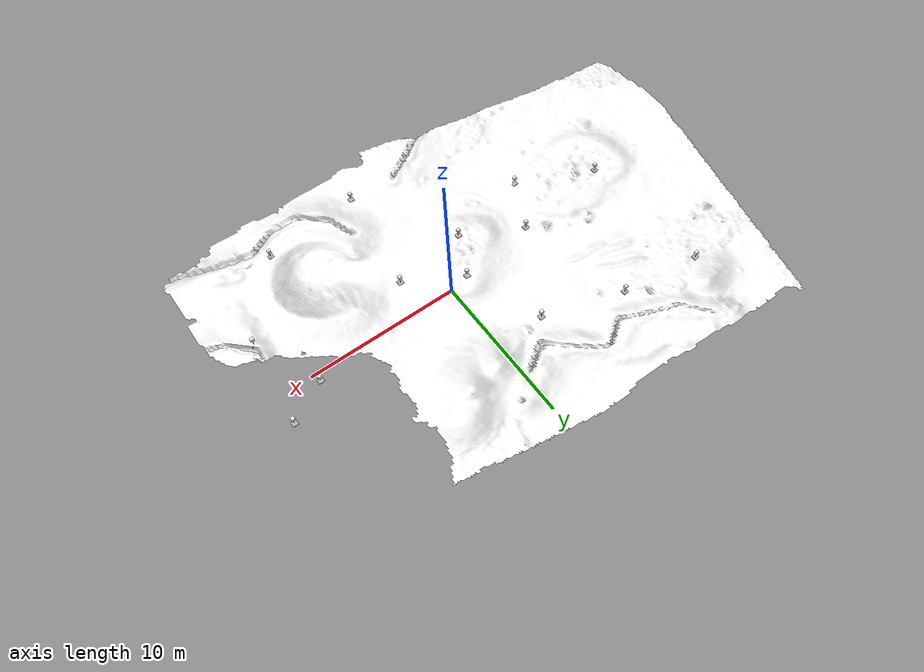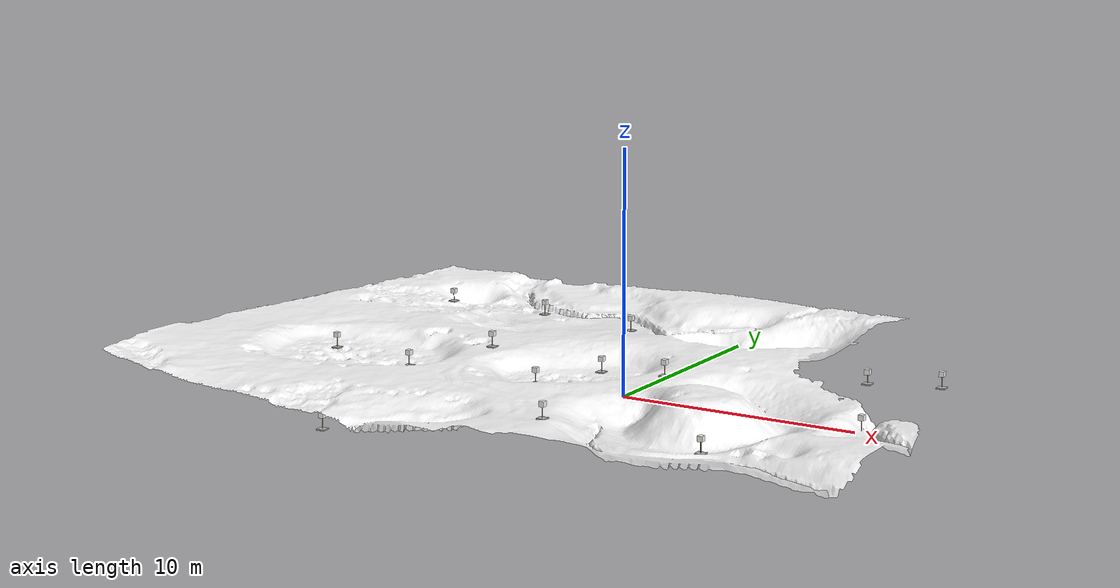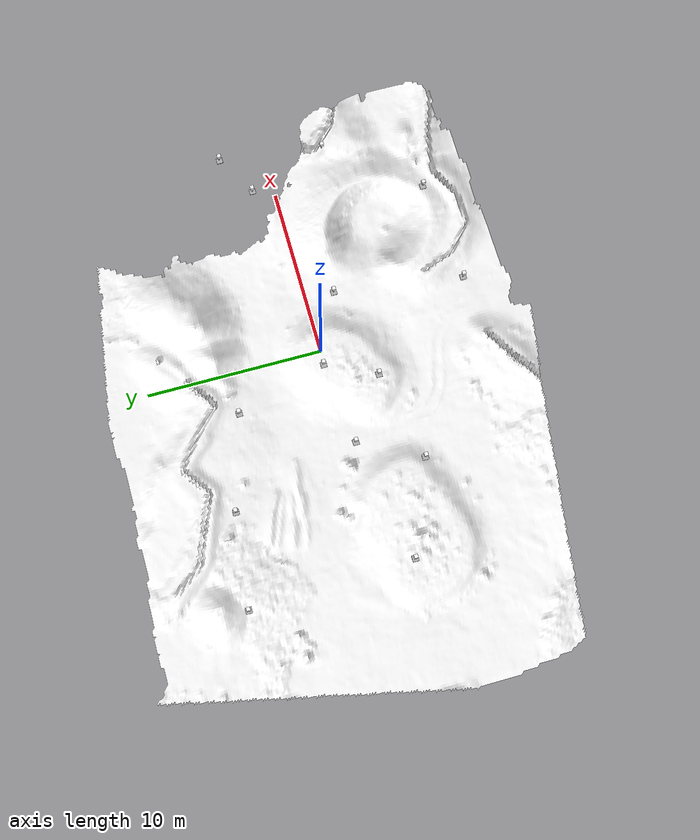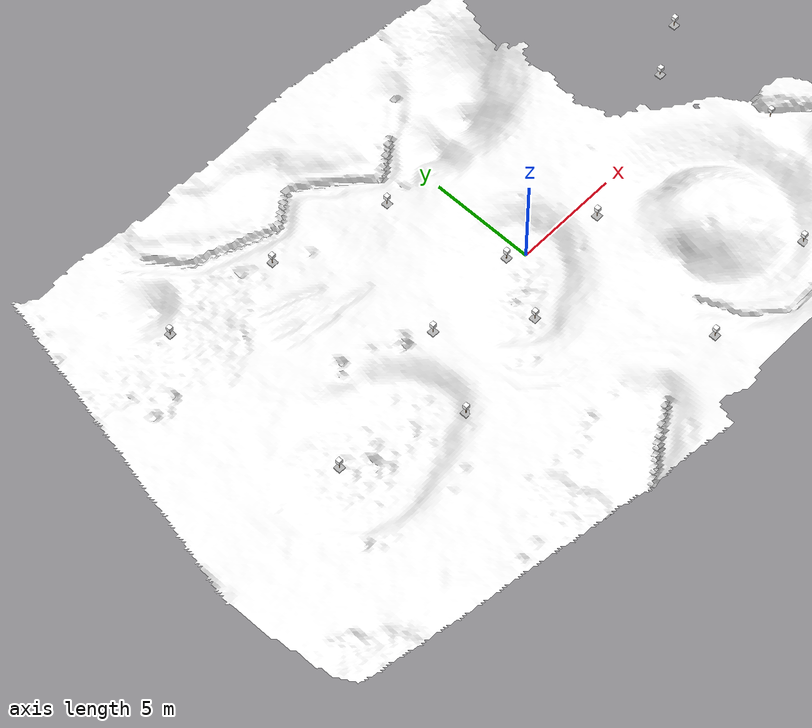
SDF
<?xml version='1.0' encoding='utf-8'?>
<sdf version="1.7">
  <world name="marsyard">
    <gravity>0 0 -9.81</gravity>
    <physics name="dart_physics" type="ignored">
      <max_step_size>0.003</max_step_size>
      <real_time_update_rate>333</real_time_update_rate>
      <real_time_factor>1.0</real_time_factor>
    </physics>
    <plugin filename="ignition-gazebo-physics-system" name="ignition::gazebo::systems::Physics" />
    <plugin filename="ignition-gazebo-user-commands-system" name="ignition::gazebo::systems::UserCommands" />
    <plugin filename="ignition-gazebo-scene-broadcaster-system" name="ignition::gazebo::systems::SceneBroadcaster" />
    <plugin filename="ignition-gazebo-contact-system" name="ignition::gazebo::systems::Contact" />
    <scene>
      <ambient>0.95 0.95 0.95 1</ambient>
      <background>0.70 0.70 0.70 1</background>
      <shadows>false</shadows>
    </scene>
    <light type="directional" name="sun">
      <cast_shadows>false</cast_shadows>
      <pose>0 0 30 0 0 0</pose>
      <diffuse>1 1 1 1</diffuse>
      <specular>0.15 0.15 0.15 1</specular>
      <direction>-0.35 0.1 -0.93</direction>
    </light>
    <include>
      <uri>model://mars_yard</uri>
      <pose>0 0 0 0 0 0</pose>
    </include>
    <model name="ArUco_51">
      <static>true</static>
      <pose>-12.8626 -1.6754 0.7429 0.0000 0.0000 0.0000</pose>
      <include>
        <uri>model://aruco_1</uri>
      </include>
    </model>
    <model name="ArUco_52">
      <static>true</static>
      <pose>-6.9112 -10.5555 0.2000 0.0000 0.0000 0.0000</pose>
      <include>
        <uri>model://aruco_2</uri>
      </include>
    </model>
    <model name="ArUco_53">
      <static>true</static>
      <pose>-7.7269 -3.7522 1.0725 0.0000 0.0000 0.0000</pose>
      <include>
        <uri>model://aruco_3</uri>
      </include>
    </model>
    <model name="ArUco_54">
      <static>true</static>
      <pose>-2.4448 -2.6740 0.8188 0.0000 0.0000 0.0000</pose>
      <include>
        <uri>model://aruco_4</uri>
      </include>
    </model>
    <model name="ArUco_55">
      <static>true</static>
      <pose>1.6623 -8.7646 1.4218 0.0000 0.0000 0.0000</pose>
      <include>
        <uri>model://aruco_5</uri>
      </include>
    </model>
    <model name="ArUco_56">
      <static>true</static>
      <pose>7.8746 -8.3014 0.9358 0.0000 0.0000 0.0000</pose>
      <include>
        <uri>model://aruco_6</uri>
      </include>
    </model>
    <model name="ArUco_57">
      <static>true</static>
      <pose>11.7097 -3.2808 1.0574 0.0000 0.0000 0.0000</pose>
      <include>
        <uri>model://aruco_7</uri>
      </include>
    </model>
    <model name="ArUco_58">
      <static>true</static>
      <pose>12.3320 2.6813 1.4401 0.0000 0.0000 0.0000</pose>
      <include>
        <uri>model://aruco_8</uri>
      </include>
    </model>
    <model name="ArUco_59">
      <static>true</static>
      <pose>9.8693 1.3461 1.5639 0.0000 0.0000 0.0000</pose>
      <include>
        <uri>model://aruco_9</uri>
      </include>
    </model>
    <model name="ArUco_60">
      <static>true</static>
      <pose>2.6570 -1.4837 1.5374 0.0000 0.0000 0.0000</pose>
      <include>
        <uri>model://aruco_10</uri>
      </include>
    </model>
    <model name="ArUco_61">
      <static>true</static>
      <pose>-1.0969 0.1368 0.8388 0.0000 0.0000 0.0000</pose>
      <include>
        <uri>model://aruco_11</uri>
      </include>
    </model>
    <model name="ArUco_62">
      <static>true</static>
      <pose>-2.7377 5.3769 1.2709 0.0000 0.0000 0.0000</pose>
      <include>
        <uri>model://aruco_12</uri>
      </include>
    </model>
    <model name="ArUco_63">
      <static>true</static>
      <pose>-5.9985 -0.3173 1.3591 0.0000 0.0000 0.0000</pose>
      <include>
        <uri>model://aruco_13</uri>
      </include>
    </model>
    <model name="ArUco_64">
      <static>true</static>
      <pose>-7.9646 6.9120 1.0548 0.0000 0.0000 0.0000</pose>
      <include>
        <uri>model://aruco_14</uri>
      </include>
    </model>
    <model name="ArUco_65">
      <static>true</static>
      <pose>-13.2124 7.5601 0.9365 0.0000 0.0000 0.0000</pose>
      <include>
        <uri>model://aruco_15</uri>
      </include>
    </model>
  </world>
</sdf>

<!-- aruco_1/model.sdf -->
<sdf version="1.6">
  <model name="aruco_1">
    <static>true</static>
    <link name="link">
      <!-- Concrete Base -->
      <visual name="base_visual">
        <pose>0 0 0.025 0 0 0</pose>
        <geometry>
          <box>
            <size>0.35 0.35 0.05</size>
          </box>
        </geometry>
        <material>
          <ambient>0.7 0.7 0.7 1</ambient>
          <diffuse>0.7 0.7 0.7 1</diffuse>
        </material>
      </visual>
      <collision name="base_collision">
        <pose>0 0 0.025 0 0 0</pose>
        <geometry>
          <box>
            <size>0.35 0.35 0.05</size>
          </box>
        </geometry>
      </collision>

      <!-- Wooden Pole -->
      <visual name="pole_visual">
        <pose>0 0 0.26 0 0 0</pose>
        <geometry>
          <cylinder>
            <radius>0.015</radius>
            <length>0.42</length>
          </cylinder>
        </geometry>
        <material>
          <ambient>0.6 0.4 0.2 1</ambient>
          <diffuse>0.6 0.4 0.2 1</diffuse>
        </material>
      </visual>
      <collision name="pole_collision">
        <pose>0 0 0.26 0 0 0</pose>
        <geometry>
          <cylinder>
            <radius>0.015</radius>
            <length>0.42</length>
          </cylinder>
        </geometry>
      </collision>

      <!-- Head Box with ArUco Texture -->
      <visual name="head_visual">
        <pose>0 0 0.575 0 0 0</pose>
        <geometry>
          <box>
            <size>0.21 0.21 0.21</size>
          </box>
        </geometry>
        <material>
          <ambient>1 1 1 1</ambient>
          <diffuse>1 1 1 1</diffuse>
          <pbr>
            <metal>
              <albedo_map>model://aruco_1/materials/textures/marker_1.png</albedo_map>
            </metal>
          </pbr>
        </material>
      </visual>
      <collision name="head_collision">
        <pose>0 0 0.575 0 0 0</pose>
        <geometry>
          <box>
            <size>0.21 0.21 0.21</size>
          </box>
        </geometry>
      </collision>
    </link>
  </model>
</sdf>

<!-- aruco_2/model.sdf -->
<sdf version="1.6">
  <model name="aruco_2">
    <static>true</static>
    <link name="link">
      <!-- Concrete Base -->
      <visual name="base_visual">
        <pose>0 0 0.025 0 0 0</pose>
        <geometry>
          <box>
            <size>0.35 0.35 0.05</size>
          </box>
        </geometry>
        <material>
          <ambient>0.7 0.7 0.7 1</ambient>
          <diffuse>0.7 0.7 0.7 1</diffuse>
        </material>
      </visual>
      <collision name="base_collision">
        <pose>0 0 0.025 0 0 0</pose>
        <geometry>
          <box>
            <size>0.35 0.35 0.05</size>
          </box>
        </geometry>
      </collision>

      <!-- Wooden Pole -->
      <visual name="pole_visual">
        <pose>0 0 0.26 0 0 0</pose>
        <geometry>
          <cylinder>
            <radius>0.015</radius>
            <length>0.42</length>
          </cylinder>
        </geometry>
        <material>
          <ambient>0.6 0.4 0.2 1</ambient>
          <diffuse>0.6 0.4 0.2 1</diffuse>
        </material>
      </visual>
      <collision name="pole_collision">
        <pose>0 0 0.26 0 0 0</pose>
        <geometry>
          <cylinder>
            <radius>0.015</radius>
            <length>0.42</length>
          </cylinder>
        </geometry>
      </collision>

      <!-- Head Box with ArUco Texture -->
      <visual name="head_visual">
        <pose>0 0 0.575 0 0 0</pose>
        <geometry>
          <box>
            <size>0.21 0.21 0.21</size>
          </box>
        </geometry>
        <material>
          <ambient>1 1 1 1</ambient>
          <diffuse>1 1 1 1</diffuse>
          <pbr>
            <metal>
              <albedo_map>model://aruco_2/materials/textures/marker_2.png</albedo_map>
            </metal>
          </pbr>
        </material>
      </visual>
      <collision name="head_collision">
        <pose>0 0 0.575 0 0 0</pose>
        <geometry>
          <box>
            <size>0.21 0.21 0.21</size>
          </box>
        </geometry>
      </collision>
    </link>
  </model>
</sdf>

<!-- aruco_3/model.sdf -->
<sdf version="1.6">
  <model name="aruco_3">
    <static>true</static>
    <link name="link">
      <!-- Concrete Base -->
      <visual name="base_visual">
        <pose>0 0 0.025 0 0 0</pose>
        <geometry>
          <box>
            <size>0.35 0.35 0.05</size>
          </box>
        </geometry>
        <material>
          <ambient>0.7 0.7 0.7 1</ambient>
          <diffuse>0.7 0.7 0.7 1</diffuse>
        </material>
      </visual>
      <collision name="base_collision">
        <pose>0 0 0.025 0 0 0</pose>
        <geometry>
          <box>
            <size>0.35 0.35 0.05</size>
          </box>
        </geometry>
      </collision>

      <!-- Wooden Pole -->
      <visual name="pole_visual">
        <pose>0 0 0.26 0 0 0</pose>
        <geometry>
          <cylinder>
            <radius>0.015</radius>
            <length>0.42</length>
          </cylinder>
        </geometry>
        <material>
          <ambient>0.6 0.4 0.2 1</ambient>
          <diffuse>0.6 0.4 0.2 1</diffuse>
        </material>
      </visual>
      <collision name="pole_collision">
        <pose>0 0 0.26 0 0 0</pose>
        <geometry>
          <cylinder>
            <radius>0.015</radius>
            <length>0.42</length>
          </cylinder>
        </geometry>
      </collision>

      <!-- Head Box with ArUco Texture -->
      <visual name="head_visual">
        <pose>0 0 0.575 0 0 0</pose>
        <geometry>
          <box>
            <size>0.21 0.21 0.21</size>
          </box>
        </geometry>
        <material>
          <ambient>1 1 1 1</ambient>
          <diffuse>1 1 1 1</diffuse>
          <pbr>
            <metal>
              <albedo_map>model://aruco_3/materials/textures/marker_3.png</albedo_map>
            </metal>
          </pbr>
        </material>
      </visual>
      <collision name="head_collision">
        <pose>0 0 0.575 0 0 0</pose>
        <geometry>
          <box>
            <size>0.21 0.21 0.21</size>
          </box>
        </geometry>
      </collision>
    </link>
  </model>
</sdf>

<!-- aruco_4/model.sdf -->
<sdf version="1.6">
  <model name="aruco_4">
    <static>true</static>
    <link name="link">
      <!-- Concrete Base -->
      <visual name="base_visual">
        <pose>0 0 0.025 0 0 0</pose>
        <geometry>
          <box>
            <size>0.35 0.35 0.05</size>
          </box>
        </geometry>
        <material>
          <ambient>0.7 0.7 0.7 1</ambient>
          <diffuse>0.7 0.7 0.7 1</diffuse>
        </material>
      </visual>
      <collision name="base_collision">
        <pose>0 0 0.025 0 0 0</pose>
        <geometry>
          <box>
            <size>0.35 0.35 0.05</size>
          </box>
        </geometry>
      </collision>

      <!-- Wooden Pole -->
      <visual name="pole_visual">
        <pose>0 0 0.26 0 0 0</pose>
        <geometry>
          <cylinder>
            <radius>0.015</radius>
            <length>0.42</length>
          </cylinder>
        </geometry>
        <material>
          <ambient>0.6 0.4 0.2 1</ambient>
          <diffuse>0.6 0.4 0.2 1</diffuse>
        </material>
      </visual>
      <collision name="pole_collision">
        <pose>0 0 0.26 0 0 0</pose>
        <geometry>
          <cylinder>
            <radius>0.015</radius>
            <length>0.42</length>
          </cylinder>
        </geometry>
      </collision>

      <!-- Head Box with ArUco Texture -->
      <visual name="head_visual">
        <pose>0 0 0.575 0 0 0</pose>
        <geometry>
          <box>
            <size>0.21 0.21 0.21</size>
          </box>
        </geometry>
        <material>
          <ambient>1 1 1 1</ambient>
          <diffuse>1 1 1 1</diffuse>
          <pbr>
            <metal>
              <albedo_map>model://aruco_4/materials/textures/marker_4.png</albedo_map>
            </metal>
          </pbr>
        </material>
      </visual>
      <collision name="head_collision">
        <pose>0 0 0.575 0 0 0</pose>
        <geometry>
          <box>
            <size>0.21 0.21 0.21</size>
          </box>
        </geometry>
      </collision>
    </link>
  </model>
</sdf>

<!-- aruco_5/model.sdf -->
<sdf version="1.6">
  <model name="aruco_5">
    <static>true</static>
    <link name="link">
      <!-- Concrete Base -->
      <visual name="base_visual">
        <pose>0 0 0.025 0 0 0</pose>
        <geometry>
          <box>
            <size>0.35 0.35 0.05</size>
          </box>
        </geometry>
        <material>
          <ambient>0.7 0.7 0.7 1</ambient>
          <diffuse>0.7 0.7 0.7 1</diffuse>
        </material>
      </visual>
      <collision name="base_collision">
        <pose>0 0 0.025 0 0 0</pose>
        <geometry>
          <box>
            <size>0.35 0.35 0.05</size>
          </box>
        </geometry>
      </collision>

      <!-- Wooden Pole -->
      <visual name="pole_visual">
        <pose>0 0 0.26 0 0 0</pose>
        <geometry>
          <cylinder>
            <radius>0.015</radius>
            <length>0.42</length>
          </cylinder>
        </geometry>
        <material>
          <ambient>0.6 0.4 0.2 1</ambient>
          <diffuse>0.6 0.4 0.2 1</diffuse>
        </material>
      </visual>
      <collision name="pole_collision">
        <pose>0 0 0.26 0 0 0</pose>
        <geometry>
          <cylinder>
            <radius>0.015</radius>
            <length>0.42</length>
          </cylinder>
        </geometry>
      </collision>

      <!-- Head Box with ArUco Texture -->
      <visual name="head_visual">
        <pose>0 0 0.575 0 0 0</pose>
        <geometry>
          <box>
            <size>0.21 0.21 0.21</size>
          </box>
        </geometry>
        <material>
          <ambient>1 1 1 1</ambient>
          <diffuse>1 1 1 1</diffuse>
          <pbr>
            <metal>
              <albedo_map>model://aruco_5/materials/textures/marker_5.png</albedo_map>
            </metal>
          </pbr>
        </material>
      </visual>
      <collision name="head_collision">
        <pose>0 0 0.575 0 0 0</pose>
        <geometry>
          <box>
            <size>0.21 0.21 0.21</size>
          </box>
        </geometry>
      </collision>
    </link>
  </model>
</sdf>

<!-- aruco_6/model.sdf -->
<sdf version="1.6">
  <model name="aruco_6">
    <static>true</static>
    <link name="link">
      <!-- Concrete Base -->
      <visual name="base_visual">
        <pose>0 0 0.025 0 0 0</pose>
        <geometry>
          <box>
            <size>0.35 0.35 0.05</size>
          </box>
        </geometry>
        <material>
          <ambient>0.7 0.7 0.7 1</ambient>
          <diffuse>0.7 0.7 0.7 1</diffuse>
        </material>
      </visual>
      <collision name="base_collision">
        <pose>0 0 0.025 0 0 0</pose>
        <geometry>
          <box>
            <size>0.35 0.35 0.05</size>
          </box>
        </geometry>
      </collision>

      <!-- Wooden Pole -->
      <visual name="pole_visual">
        <pose>0 0 0.26 0 0 0</pose>
        <geometry>
          <cylinder>
            <radius>0.015</radius>
            <length>0.42</length>
          </cylinder>
        </geometry>
        <material>
          <ambient>0.6 0.4 0.2 1</ambient>
          <diffuse>0.6 0.4 0.2 1</diffuse>
        </material>
      </visual>
      <collision name="pole_collision">
        <pose>0 0 0.26 0 0 0</pose>
        <geometry>
          <cylinder>
            <radius>0.015</radius>
            <length>0.42</length>
          </cylinder>
        </geometry>
      </collision>

      <!-- Head Box with ArUco Texture -->
      <visual name="head_visual">
        <pose>0 0 0.575 0 0 0</pose>
        <geometry>
          <box>
            <size>0.21 0.21 0.21</size>
          </box>
        </geometry>
        <material>
          <ambient>1 1 1 1</ambient>
          <diffuse>1 1 1 1</diffuse>
          <pbr>
            <metal>
              <albedo_map>model://aruco_6/materials/textures/marker_6.png</albedo_map>
            </metal>
          </pbr>
        </material>
      </visual>
      <collision name="head_collision">
        <pose>0 0 0.575 0 0 0</pose>
        <geometry>
          <box>
            <size>0.21 0.21 0.21</size>
          </box>
        </geometry>
      </collision>
    </link>
  </model>
</sdf>

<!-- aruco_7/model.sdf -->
<sdf version="1.6">
  <model name="aruco_7">
    <static>true</static>
    <link name="link">
      <!-- Concrete Base -->
      <visual name="base_visual">
        <pose>0 0 0.025 0 0 0</pose>
        <geometry>
          <box>
            <size>0.35 0.35 0.05</size>
          </box>
        </geometry>
        <material>
          <ambient>0.7 0.7 0.7 1</ambient>
          <diffuse>0.7 0.7 0.7 1</diffuse>
        </material>
      </visual>
      <collision name="base_collision">
        <pose>0 0 0.025 0 0 0</pose>
        <geometry>
          <box>
            <size>0.35 0.35 0.05</size>
          </box>
        </geometry>
      </collision>

      <!-- Wooden Pole -->
      <visual name="pole_visual">
        <pose>0 0 0.26 0 0 0</pose>
        <geometry>
          <cylinder>
            <radius>0.015</radius>
            <length>0.42</length>
          </cylinder>
        </geometry>
        <material>
          <ambient>0.6 0.4 0.2 1</ambient>
          <diffuse>0.6 0.4 0.2 1</diffuse>
        </material>
      </visual>
      <collision name="pole_collision">
        <pose>0 0 0.26 0 0 0</pose>
        <geometry>
          <cylinder>
            <radius>0.015</radius>
            <length>0.42</length>
          </cylinder>
        </geometry>
      </collision>

      <!-- Head Box with ArUco Texture -->
      <visual name="head_visual">
        <pose>0 0 0.575 0 0 0</pose>
        <geometry>
          <box>
            <size>0.21 0.21 0.21</size>
          </box>
        </geometry>
        <material>
          <ambient>1 1 1 1</ambient>
          <diffuse>1 1 1 1</diffuse>
          <pbr>
            <metal>
              <albedo_map>model://aruco_7/materials/textures/marker_7.png</albedo_map>
            </metal>
          </pbr>
        </material>
      </visual>
      <collision name="head_collision">
        <pose>0 0 0.575 0 0 0</pose>
        <geometry>
          <box>
            <size>0.21 0.21 0.21</size>
          </box>
        </geometry>
      </collision>
    </link>
  </model>
</sdf>

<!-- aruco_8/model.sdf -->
<sdf version="1.6">
  <model name="aruco_8">
    <static>true</static>
    <link name="link">
      <!-- Concrete Base -->
      <visual name="base_visual">
        <pose>0 0 0.025 0 0 0</pose>
        <geometry>
          <box>
            <size>0.35 0.35 0.05</size>
          </box>
        </geometry>
        <material>
          <ambient>0.7 0.7 0.7 1</ambient>
          <diffuse>0.7 0.7 0.7 1</diffuse>
        </material>
      </visual>
      <collision name="base_collision">
        <pose>0 0 0.025 0 0 0</pose>
        <geometry>
          <box>
            <size>0.35 0.35 0.05</size>
          </box>
        </geometry>
      </collision>

      <!-- Wooden Pole -->
      <visual name="pole_visual">
        <pose>0 0 0.26 0 0 0</pose>
        <geometry>
          <cylinder>
            <radius>0.015</radius>
            <length>0.42</length>
          </cylinder>
        </geometry>
        <material>
          <ambient>0.6 0.4 0.2 1</ambient>
          <diffuse>0.6 0.4 0.2 1</diffuse>
        </material>
      </visual>
      <collision name="pole_collision">
        <pose>0 0 0.26 0 0 0</pose>
        <geometry>
          <cylinder>
            <radius>0.015</radius>
            <length>0.42</length>
          </cylinder>
        </geometry>
      </collision>

      <!-- Head Box with ArUco Texture -->
      <visual name="head_visual">
        <pose>0 0 0.575 0 0 0</pose>
        <geometry>
          <box>
            <size>0.21 0.21 0.21</size>
          </box>
        </geometry>
        <material>
          <ambient>1 1 1 1</ambient>
          <diffuse>1 1 1 1</diffuse>
          <pbr>
            <metal>
              <albedo_map>model://aruco_8/materials/textures/marker_8.png</albedo_map>
            </metal>
          </pbr>
        </material>
      </visual>
      <collision name="head_collision">
        <pose>0 0 0.575 0 0 0</pose>
        <geometry>
          <box>
            <size>0.21 0.21 0.21</size>
          </box>
        </geometry>
      </collision>
    </link>
  </model>
</sdf>

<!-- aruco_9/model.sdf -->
<sdf version="1.6">
  <model name="aruco_9">
    <static>true</static>
    <link name="link">
      <visual name="base_visual">
        <pose>0 0 0.025 0 0 0</pose>
        <geometry>
          <box>
            <size>0.35 0.35 0.05</size>
          </box>
        </geometry>
        <material>
          <ambient>0.7 0.7 0.7 1</ambient>
          <diffuse>0.7 0.7 0.7 1</diffuse>
        </material>
      </visual>
      <collision name="base_collision">
        <pose>0 0 0.025 0 0 0</pose>
        <geometry>
          <box>
            <size>0.35 0.35 0.05</size>
          </box>
        </geometry>
      </collision>
      <visual name="pole_visual">
        <pose>0 0 0.228500 0 0 0</pose>
        <geometry>
          <cylinder>
            <radius>0.015</radius>
            <length>0.357000</length>
          </cylinder>
        </geometry>
        <material>
          <ambient>0.6 0.4 0.2 1</ambient>
          <diffuse>0.6 0.4 0.2 1</diffuse>
        </material>
      </visual>
      <collision name="pole_collision">
        <pose>0 0 0.228500 0 0 0</pose>
        <geometry>
          <cylinder>
            <radius>0.015</radius>
            <length>0.357000</length>
          </cylinder>
        </geometry>
      </collision>
      <visual name="head_visual">
        <pose>0 0 0.496250 0 0 0</pose>
        <geometry>
          <box>
            <size>0.21 0.21 0.21</size>
          </box>
        </geometry>
        <material>
          <ambient>1 1 1 1</ambient>
          <diffuse>1 1 1 1</diffuse>
          <pbr>
            <metal>
              <albedo_map>model://aruco_9/materials/textures/marker_9.png</albedo_map>
            </metal>
          </pbr>
        </material>
      </visual>
      <collision name="head_collision">
        <pose>0 0 0.496250 0 0 0</pose>
        <geometry>
          <box>
            <size>0.21 0.21 0.21</size>
          </box>
        </geometry>
      </collision>
    </link>
  </model>
</sdf>

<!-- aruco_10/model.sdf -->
<sdf version="1.6">
  <model name="aruco_10">
    <static>true</static>
    <link name="link">
      <!-- Concrete Base -->
      <visual name="base_visual">
        <pose>0 0 0.025 0 0 0</pose>
        <geometry>
          <box>
            <size>0.35 0.35 0.05</size>
          </box>
        </geometry>
        <material>
          <ambient>0.7 0.7 0.7 1</ambient>
          <diffuse>0.7 0.7 0.7 1</diffuse>
        </material>
      </visual>
      <collision name="base_collision">
        <pose>0 0 0.025 0 0 0</pose>
        <geometry>
          <box>
            <size>0.35 0.35 0.05</size>
          </box>
        </geometry>
      </collision>

      <!-- Wooden Pole -->
      <visual name="pole_visual">
        <pose>0 0 0.26 0 0 0</pose>
        <geometry>
          <cylinder>
            <radius>0.015</radius>
            <length>0.42</length>
          </cylinder>
        </geometry>
        <material>
          <ambient>0.6 0.4 0.2 1</ambient>
          <diffuse>0.6 0.4 0.2 1</diffuse>
        </material>
      </visual>
      <collision name="pole_collision">
        <pose>0 0 0.26 0 0 0</pose>
        <geometry>
          <cylinder>
            <radius>0.015</radius>
            <length>0.42</length>
          </cylinder>
        </geometry>
      </collision>

      <!-- Head Box with ArUco Texture -->
      <visual name="head_visual">
        <pose>0 0 0.575 0 0 0</pose>
        <geometry>
          <box>
            <size>0.21 0.21 0.21</size>
          </box>
        </geometry>
        <material>
          <ambient>1 1 1 1</ambient>
          <diffuse>1 1 1 1</diffuse>
          <pbr>
            <metal>
              <albedo_map>model://aruco_10/materials/textures/marker_10.png</albedo_map>
            </metal>
          </pbr>
        </material>
      </visual>
      <collision name="head_collision">
        <pose>0 0 0.575 0 0 0</pose>
        <geometry>
          <box>
            <size>0.21 0.21 0.21</size>
          </box>
        </geometry>
      </collision>
    </link>
  </model>
</sdf>

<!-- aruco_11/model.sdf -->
<sdf version="1.6">
  <model name="aruco_11">
    <static>true</static>
    <link name="link">
      <!-- Concrete Base -->
      <visual name="base_visual">
        <pose>0 0 0.025 0 0 0</pose>
        <geometry>
          <box>
            <size>0.35 0.35 0.05</size>
          </box>
        </geometry>
        <material>
          <ambient>0.7 0.7 0.7 1</ambient>
          <diffuse>0.7 0.7 0.7 1</diffuse>
        </material>
      </visual>
      <collision name="base_collision">
        <pose>0 0 0.025 0 0 0</pose>
        <geometry>
          <box>
            <size>0.35 0.35 0.05</size>
          </box>
        </geometry>
      </collision>

      <!-- Wooden Pole -->
      <visual name="pole_visual">
        <pose>0 0 0.26 0 0 0</pose>
        <geometry>
          <cylinder>
            <radius>0.015</radius>
            <length>0.42</length>
          </cylinder>
        </geometry>
        <material>
          <ambient>0.6 0.4 0.2 1</ambient>
          <diffuse>0.6 0.4 0.2 1</diffuse>
        </material>
      </visual>
      <collision name="pole_collision">
        <pose>0 0 0.26 0 0 0</pose>
        <geometry>
          <cylinder>
            <radius>0.015</radius>
            <length>0.42</length>
          </cylinder>
        </geometry>
      </collision>

      <!-- Head Box with ArUco Texture -->
      <visual name="head_visual">
        <pose>0 0 0.575 0 0 0</pose>
        <geometry>
          <box>
            <size>0.21 0.21 0.21</size>
          </box>
        </geometry>
        <material>
          <ambient>1 1 1 1</ambient>
          <diffuse>1 1 1 1</diffuse>
          <pbr>
            <metal>
              <albedo_map>model://aruco_11/materials/textures/marker_11.png</albedo_map>
            </metal>
          </pbr>
        </material>
      </visual>
      <collision name="head_collision">
        <pose>0 0 0.575 0 0 0</pose>
        <geometry>
          <box>
            <size>0.21 0.21 0.21</size>
          </box>
        </geometry>
      </collision>
    </link>
  </model>
</sdf>

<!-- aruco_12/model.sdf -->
<sdf version="1.6">
  <model name="aruco_12">
    <static>true</static>
    <link name="link">
      <!-- Concrete Base -->
      <visual name="base_visual">
        <pose>0 0 0.025 0 0 0</pose>
        <geometry>
          <box>
            <size>0.35 0.35 0.05</size>
          </box>
        </geometry>
        <material>
          <ambient>0.7 0.7 0.7 1</ambient>
          <diffuse>0.7 0.7 0.7 1</diffuse>
        </material>
      </visual>
      <collision name="base_collision">
        <pose>0 0 0.025 0 0 0</pose>
        <geometry>
          <box>
            <size>0.35 0.35 0.05</size>
          </box>
        </geometry>
      </collision>

      <!-- Wooden Pole -->
      <visual name="pole_visual">
        <pose>0 0 0.26 0 0 0</pose>
        <geometry>
          <cylinder>
            <radius>0.015</radius>
            <length>0.42</length>
          </cylinder>
        </geometry>
        <material>
          <ambient>0.6 0.4 0.2 1</ambient>
          <diffuse>0.6 0.4 0.2 1</diffuse>
        </material>
      </visual>
      <collision name="pole_collision">
        <pose>0 0 0.26 0 0 0</pose>
        <geometry>
          <cylinder>
            <radius>0.015</radius>
            <length>0.42</length>
          </cylinder>
        </geometry>
      </collision>

      <!-- Head Box with ArUco Texture -->
      <visual name="head_visual">
        <pose>0 0 0.575 0 0 0</pose>
        <geometry>
          <box>
            <size>0.21 0.21 0.21</size>
          </box>
        </geometry>
        <material>
          <ambient>1 1 1 1</ambient>
          <diffuse>1 1 1 1</diffuse>
          <pbr>
            <metal>
              <albedo_map>model://aruco_12/materials/textures/marker_12.png</albedo_map>
            </metal>
          </pbr>
        </material>
      </visual>
      <collision name="head_collision">
        <pose>0 0 0.575 0 0 0</pose>
        <geometry>
          <box>
            <size>0.21 0.21 0.21</size>
          </box>
        </geometry>
      </collision>
    </link>
  </model>
</sdf>

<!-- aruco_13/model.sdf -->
<sdf version="1.6">
  <model name="aruco_13">
    <static>true</static>
    <link name="link">
      <!-- Concrete Base -->
      <visual name="base_visual">
        <pose>0 0 0.025 0 0 0</pose>
        <geometry>
          <box>
            <size>0.35 0.35 0.05</size>
          </box>
        </geometry>
        <material>
          <ambient>0.7 0.7 0.7 1</ambient>
          <diffuse>0.7 0.7 0.7 1</diffuse>
        </material>
      </visual>
      <collision name="base_collision">
        <pose>0 0 0.025 0 0 0</pose>
        <geometry>
          <box>
            <size>0.35 0.35 0.05</size>
          </box>
        </geometry>
      </collision>

      <!-- Wooden Pole -->
      <visual name="pole_visual">
        <pose>0 0 0.26 0 0 0</pose>
        <geometry>
          <cylinder>
            <radius>0.015</radius>
            <length>0.42</length>
          </cylinder>
        </geometry>
        <material>
          <ambient>0.6 0.4 0.2 1</ambient>
          <diffuse>0.6 0.4 0.2 1</diffuse>
        </material>
      </visual>
      <collision name="pole_collision">
        <pose>0 0 0.26 0 0 0</pose>
        <geometry>
          <cylinder>
            <radius>0.015</radius>
            <length>0.42</length>
          </cylinder>
        </geometry>
      </collision>

      <!-- Head Box with ArUco Texture -->
      <visual name="head_visual">
        <pose>0 0 0.575 0 0 0</pose>
        <geometry>
          <box>
            <size>0.21 0.21 0.21</size>
          </box>
        </geometry>
        <material>
          <ambient>1 1 1 1</ambient>
          <diffuse>1 1 1 1</diffuse>
          <pbr>
            <metal>
              <albedo_map>model://aruco_13/materials/textures/marker_13.png</albedo_map>
            </metal>
          </pbr>
        </material>
      </visual>
      <collision name="head_collision">
        <pose>0 0 0.575 0 0 0</pose>
        <geometry>
          <box>
            <size>0.21 0.21 0.21</size>
          </box>
        </geometry>
      </collision>
    </link>
  </model>
</sdf>

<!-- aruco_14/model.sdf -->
<sdf version="1.6">
  <model name="aruco_14">
    <static>true</static>
    <link name="link">
      <!-- Concrete Base -->
      <visual name="base_visual">
        <pose>0 0 0.025 0 0 0</pose>
        <geometry>
          <box>
            <size>0.35 0.35 0.05</size>
          </box>
        </geometry>
        <material>
          <ambient>0.7 0.7 0.7 1</ambient>
          <diffuse>0.7 0.7 0.7 1</diffuse>
        </material>
      </visual>
      <collision name="base_collision">
        <pose>0 0 0.025 0 0 0</pose>
        <geometry>
          <box>
            <size>0.35 0.35 0.05</size>
          </box>
        </geometry>
      </collision>

      <!-- Wooden Pole -->
      <visual name="pole_visual">
        <pose>0 0 0.26 0 0 0</pose>
        <geometry>
          <cylinder>
            <radius>0.015</radius>
            <length>0.42</length>
          </cylinder>
        </geometry>
        <material>
          <ambient>0.6 0.4 0.2 1</ambient>
          <diffuse>0.6 0.4 0.2 1</diffuse>
        </material>
      </visual>
      <collision name="pole_collision">
        <pose>0 0 0.26 0 0 0</pose>
        <geometry>
          <cylinder>
            <radius>0.015</radius>
            <length>0.42</length>
          </cylinder>
        </geometry>
      </collision>

      <!-- Head Box with ArUco Texture -->
      <visual name="head_visual">
        <pose>0 0 0.575 0 0 0</pose>
        <geometry>
          <box>
            <size>0.21 0.21 0.21</size>
          </box>
        </geometry>
        <material>
          <ambient>1 1 1 1</ambient>
          <diffuse>1 1 1 1</diffuse>
          <pbr>
            <metal>
              <albedo_map>model://aruco_14/materials/textures/marker_14.png</albedo_map>
            </metal>
          </pbr>
        </material>
      </visual>
      <collision name="head_collision">
        <pose>0 0 0.575 0 0 0</pose>
        <geometry>
          <box>
            <size>0.21 0.21 0.21</size>
          </box>
        </geometry>
      </collision>
    </link>
  </model>
</sdf>

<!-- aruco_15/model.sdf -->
<sdf version="1.6">
  <model name="aruco_15">
    <static>true</static>
    <link name="link">
      <visual name="base_visual">
        <pose>0 0 0.025 0 0 0</pose>
        <geometry>
          <box>
            <size>0.35 0.35 0.05</size>
          </box>
        </geometry>
        <material>
          <ambient>0.7 0.7 0.7 1</ambient>
          <diffuse>0.7 0.7 0.7 1</diffuse>
        </material>
      </visual>
      <collision name="base_collision">
        <pose>0 0 0.025 0 0 0</pose>
        <geometry>
          <box>
            <size>0.35 0.35 0.05</size>
          </box>
        </geometry>
      </collision>
      <visual name="pole_visual">
        <pose>0 0 0.228500 0 0 0</pose>
        <geometry>
          <cylinder>
            <radius>0.015</radius>
            <length>0.357000</length>
          </cylinder>
        </geometry>
        <material>
          <ambient>0.6 0.4 0.2 1</ambient>
          <diffuse>0.6 0.4 0.2 1</diffuse>
        </material>
      </visual>
      <collision name="pole_collision">
        <pose>0 0 0.228500 0 0 0</pose>
        <geometry>
          <cylinder>
            <radius>0.015</radius>
            <length>0.357000</length>
          </cylinder>
        </geometry>
      </collision>
      <visual name="head_visual">
        <pose>0 0 0.496250 0 0 0</pose>
        <geometry>
          <box>
            <size>0.21 0.21 0.21</size>
          </box>
        </geometry>
        <material>
          <ambient>1 1 1 1</ambient>
          <diffuse>1 1 1 1</diffuse>
          <pbr>
            <metal>
              <albedo_map>model://aruco_15/materials/textures/marker_15.png</albedo_map>
            </metal>
          </pbr>
        </material>
      </visual>
      <collision name="head_collision">
        <pose>0 0 0.496250 0 0 0</pose>
        <geometry>
          <box>
            <size>0.21 0.21 0.21</size>
          </box>
        </geometry>
      </collision>
    </link>
  </model>
</sdf>

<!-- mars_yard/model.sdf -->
<sdf version="1.7">
  <model name="mars_yard">
    <static>true</static><self_collide>false</self_collide>
    <link name="terrain_link">
      <visual name="terrain_visual">
        <cast_shadows>false</cast_shadows>
        <geometry>
          <mesh>
            <uri>model://mars_yard/meshes/mars_yard_exact_visual_closed.obj</uri>
          </mesh>
        </geometry>
        <material>
          <ambient>1 1 1 1</ambient>
          <diffuse>1 1 1 1</diffuse>
          <double_sided>true</double_sided>
          <pbr>
            <metal>
              <albedo_map>model://mars_yard/materials/textures/marsyard_coordsys_exact_closed.png</albedo_map>
            </metal>
          </pbr>
        </material>
      </visual>
      <collision name="terrain_collision">
        <geometry><mesh><uri>model://mars_yard/meshes/mars_yard_exact_collision.obj</uri></mesh></geometry>
        <surface>
          <friction><ode><mu>1.20</mu><mu2>1.15</mu2><slip1>0.008</slip1><slip2>0.012</slip2></ode></friction>
          <contact><ode><kp>25000000</kp><kd>3</kd><max_vel>0.05</max_vel><min_depth>0.001</min_depth></ode></contact>
          <bounce><restitution_coefficient>0.0</restitution_coefficient><threshold>100000</threshold></bounce>
        </surface>
      </collision>
    </link>
  </model>
</sdf>
